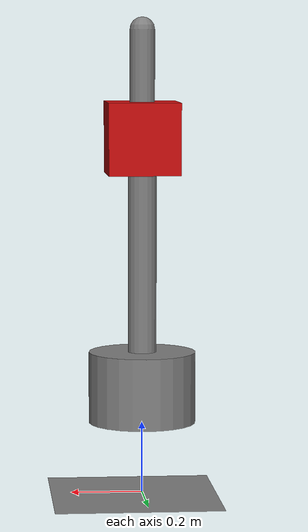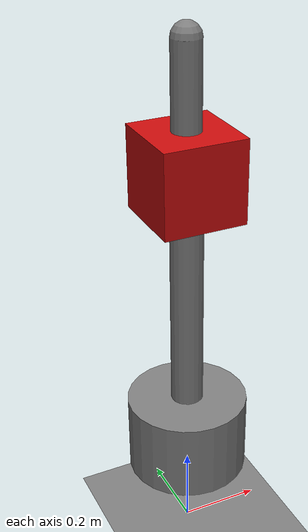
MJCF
<?xml version="1.0" encoding="utf-8"?>
<mujoco model="learn">
    <compiler angle="radian" autolimits="true"/>
    <option timestep="0.005"
        gravity="0 0 -9.81"
        integrator="implicitfast"
        density="1.225"
        viscosity="1.8e-5"
        solver="Newton"
        iterations="100"/>
    <visual>
        <global realtime="1"/>
        <quality shadowsize="2048"
            numslices="14"
            offsamples="2"/>
        <headlight diffuse="1 1 1"
            specular="0.5 0.5 0.5"
            active="1" />
        <rgba fog="0 1 0 1"
            haze="1 0 0 1" />
    </visual>
    <asset>
       <texture name="plane"
            type="2d"
            builtin="checker"
            rgb1=".1 .1 .1" rgb2=".9 .9 .9"
            width="512"
            height="512"
            mark="cross" markrgb=".8 .8 .8" />
        <material name="plane"
            reflectance="0.3"
            texture="plane"
            texrepeat="1 1"
            texuniform="true"/>
        <material name="red_plastic"
            rgba="0.8 0.05 0.05 1"/>
    </asset>
    <worldbody>
        <geom name="floor"
            type="plane"
            size="10 10 0.1"
            material="plane" />
        <body name="box" pos="0 0 1">
            <freejoint/>
            <geom
                type="box"
                size="0.1 0.1 0.1"
                mass="1"
                material="red_plastic"
            />
        </body>
        <body name="base" pos="0 0 0.3">
            <geom type="cylinder" size="0.15 0.1"/>

            <!-- link1 是 base 的子刚体 -->
            <body name="link1" pos="0 0 0.1">
                <joint name="shoulder" type="hinge" axis="0 1 0"/>
                <geom type="capsule"
                    fromto="0 0 0 0 0 0.5"
                    size="0.04"
                    mass="1"/>

            <!-- link2 是 link1 的子刚体 -->
                <body name="link2" pos="0 0 0.5">
                    <joint name="elbow" type="hinge" axis="0 1 0"/>
                    <geom type="capsule"
                    fromto="0 0 0 0 0 0.4"
                    size="0.035"
                    mass="0.6"/>
                </body>
            </body>
        </body>
    </worldbody>
</mujoco>
